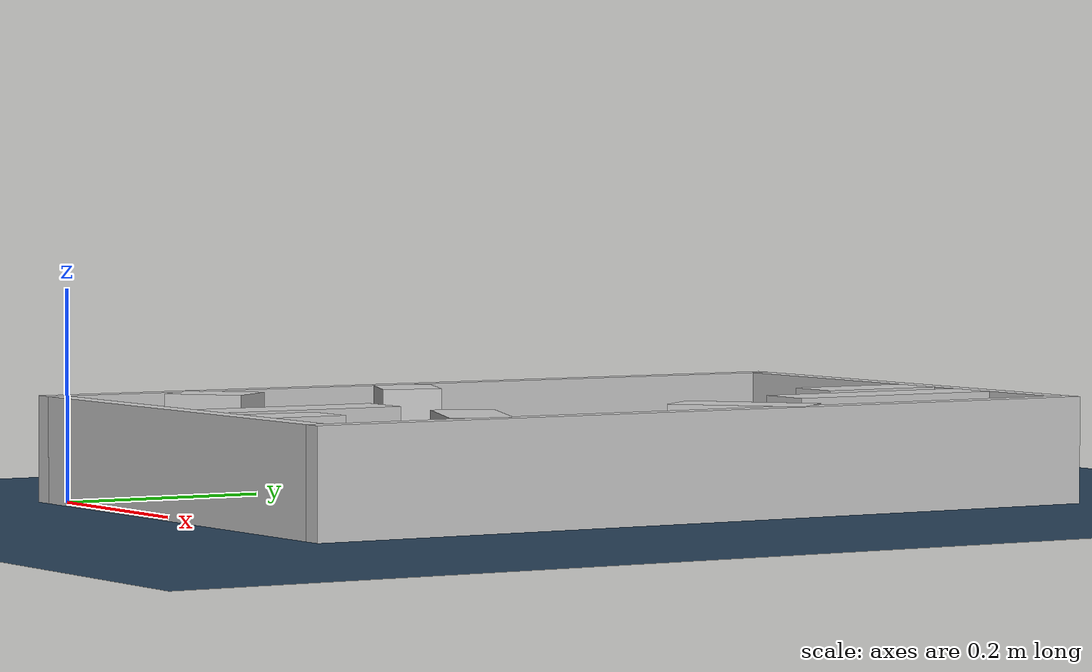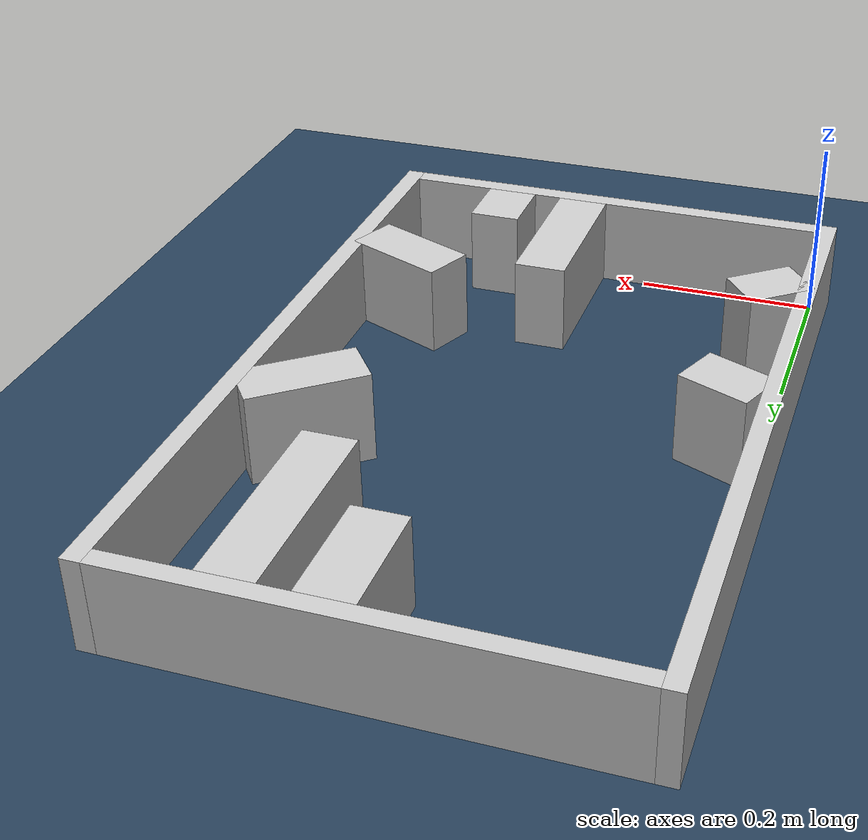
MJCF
<?xml version="1.0" ?>
<mujoco model="generated_real_template">
  <compiler angle="degree"/>
  <option timestep="0.002" integrator="implicitfast" iterations="100" cone="elliptic"/>
  <default>
    <geom density="1"/>
  </default>
  <asset>
    <texture builtin="gradient" height="3072" rgb1="0.3 0.5 0.7" rgb2="0 0 0" type="skybox" width="512"/>
    <texture builtin="checker" height="300" mark="edge" markrgb="0.8 0.8 0.8" name="groundplane" rgb1="0.2 0.3 0.4" rgb2="0.1 0.2 0.3" type="2d" width="300"/>
    <material name="groundplane" reflectance="0.2" texrepeat="5 5" texture="groundplane" texuniform="true"/>
  </asset>
  <worldbody>
    <light dir="0 0 -1" directional="true" pos="0 0 1.5"/>
    <geom name="floor" type="plane" condim="4" friction="0.5 0.005 0.001" material="groundplane" size="0 0 0.05"/>
    <body name="walls">
      <geom name="wall_boundary_left" type="box" condim="4" friction="1.0 0.005 0.0001" rgba="0.8 0.8 0.8 1" pos="-0.010000 0.387500 0.050000" euler="0 0 0.000000" size="0.010000 0.407500 0.050000"/>
      <geom name="wall_boundary_right" type="box" condim="4" friction="1.0 0.005 0.0001" rgba="0.8 0.8 0.8 1" pos="0.500000 0.387500 0.050000" euler="0 0 0.000000" size="0.010000 0.407500 0.050000"/>
      <geom name="wall_boundary_bottom" type="box" condim="4" friction="1.0 0.005 0.0001" rgba="0.8 0.8 0.8 1" pos="0.245000 -0.010000 0.050000" euler="0 0 0.000000" size="0.245000 0.010000 0.050000"/>
      <geom name="wall_boundary_top" type="box" condim="4" friction="1.0 0.005 0.0001" rgba="0.8 0.8 0.8 1" pos="0.245000 0.785000 0.050000" euler="0 0 0.000000" size="0.245000 0.010000 0.050000"/>
      <geom name="wall_inner_1_1" type="box" condim="4" friction="1.0 0.005 0.0001" rgba="0.8 0.8 0.8 1" pos="0.439760 0.464587 0.050000" euler="0 0 -141.537211" size="0.064163 0.028500 0.050000"/>
      <geom name="wall_inner_1_2" type="box" condim="4" friction="1.0 0.005 0.0001" rgba="0.8 0.8 0.8 1" pos="0.030444 0.139436 0.050000" euler="0 0 -141.537211" size="0.038880 0.028500 0.050000"/>
      <geom name="wall_inner_2_1" type="box" condim="4" friction="1.0 0.005 0.0001" rgba="0.8 0.8 0.8 1" pos="0.037100 0.345435 0.050000" euler="0 0 -22.789657" size="0.040242 0.028500 0.050000"/>
      <geom name="wall_inner_2_2" type="box" condim="4" friction="1.0 0.005 0.0001" rgba="0.8 0.8 0.8 1" pos="0.434515 0.178461 0.050000" euler="0 0 -22.789657" size="0.060183 0.028500 0.050000"/>
      <geom name="wall_inner_3_1" type="box" condim="4" friction="1.0 0.005 0.0001" rgba="0.8 0.8 0.8 1" pos="0.280397 0.089986 0.050000" euler="0 0 90.000000" size="0.089986 0.028500 0.050000"/>
      <geom name="wall_inner_3_2" type="box" condim="4" friction="1.0 0.005 0.0001" rgba="0.8 0.8 0.8 1" pos="0.280397 0.713752 0.050000" euler="0 0 90.000000" size="0.061248 0.028500 0.050000"/>
      <geom name="wall_inner_4_1" type="box" condim="4" friction="1.0 0.005 0.0001" rgba="0.8 0.8 0.8 1" pos="0.368627 0.036019 0.050000" euler="0 0 90.000000" size="0.036019 0.028500 0.050000"/>
      <geom name="wall_inner_4_2" type="box" condim="4" friction="1.0 0.005 0.0001" rgba="0.8 0.8 0.8 1" pos="0.368627 0.666224 0.050000" euler="0 0 90.000000" size="0.108776 0.028500 0.050000"/>
    </body>
  </worldbody>
</mujoco>
